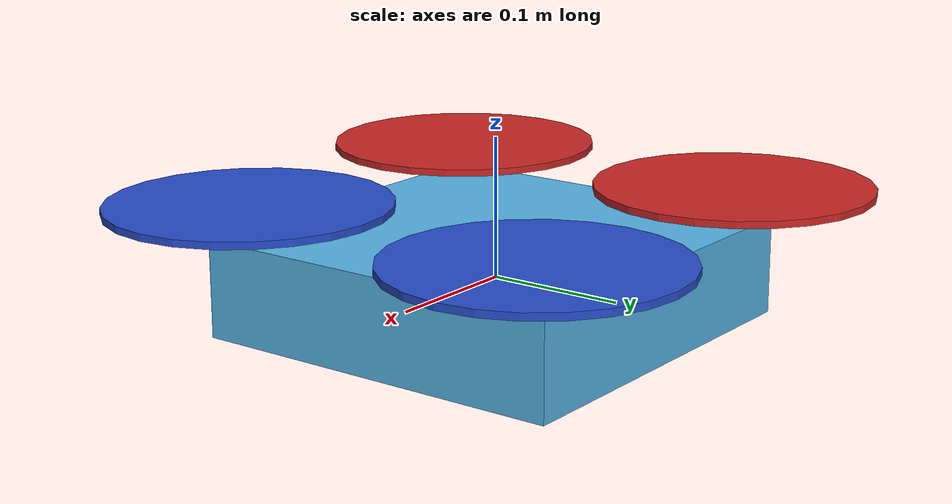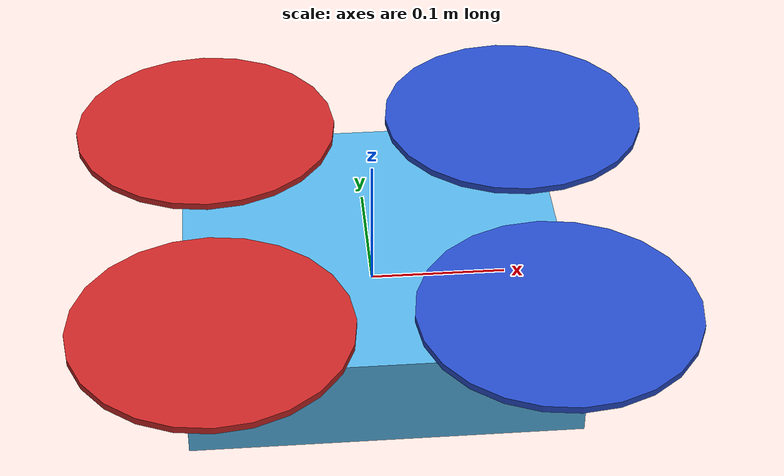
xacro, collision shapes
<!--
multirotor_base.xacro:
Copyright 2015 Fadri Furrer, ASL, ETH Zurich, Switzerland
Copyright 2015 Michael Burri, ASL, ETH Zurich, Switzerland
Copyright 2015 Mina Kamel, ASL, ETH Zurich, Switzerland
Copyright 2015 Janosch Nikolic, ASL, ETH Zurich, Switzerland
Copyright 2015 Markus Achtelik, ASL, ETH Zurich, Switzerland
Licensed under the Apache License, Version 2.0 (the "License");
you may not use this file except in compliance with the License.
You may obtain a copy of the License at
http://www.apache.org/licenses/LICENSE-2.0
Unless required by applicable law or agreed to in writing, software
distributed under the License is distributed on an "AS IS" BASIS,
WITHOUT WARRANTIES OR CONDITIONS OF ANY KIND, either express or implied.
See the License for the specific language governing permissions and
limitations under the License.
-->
<?xml version="1.0"?>

<robot name="largequad" xmlns:xacro="http://ros.org/wiki/xacro">
  <!-- Properties -->
  <xacro:property name="namespace" value="largequad" />
  <xacro:property name="rotor_velocity_slowdown_sim" value="1" />
  <xacro:property name="use_mesh_file" value="true" />
  <xacro:property name="mesh_file" value="package://rotors_description/meshes/largequad.dae" />
  <xacro:property name="mass" value="0.675" /> <!-- [kg] -->
  <xacro:property name="body_width" value="0.28" />
  <xacro:property name="body_height" value="0.07" />
  <xacro:property name="mass_rotor" value="0.00495" /> <!-- [kg] -->
  <xacro:property name="arm_length_front_x" value="0.12" />
  <xacro:property name="arm_length_back_x" value="0.12" />
  <xacro:property name="arm_length_front_y" value="0.12" />
  <xacro:property name="arm_length_back_y" value="0.12" />
  <xacro:property name="rotor_offset_top" value="0.058" />
  <xacro:property name="radius_rotor" value="0.1" />
  <xacro:property name="motor_constant" value="7.64e-06" /> <!-- [kg.m/s^2] -->
  <xacro:property name="moment_constant" value="0.014" />
  <xacro:property name="time_constant_up" value="0" />
  <xacro:property name="time_constant_down" value="0" />
  <xacro:property name="max_rot_velocity" value="10000" /> <!-- [rad/s] -->
  <xacro:property name="sin30" value="0.5" />
  <xacro:property name="cos30" value="0.866025403784" />
  <xacro:property name="sqrt2" value="1.4142135623730951" />
  <xacro:property name="rotor_drag_coefficient" value="0" />
  <xacro:property name="rolling_moment_coefficient" value="0" />

  <!-- Property Blocks -->
  <xacro:property name="body_inertia">
    <inertia ixx="0.003636" ixy="0.0" ixz="0.0" iyy="0.003636" iyz="0.0" izz="0.007379" /> <!-- [kg.m^2] [kg.m^2] [kg.m^2] [kg.m^2] [kg.m^2] [kg.m^2] -->
  </xacro:property>

  <!-- inertia of a single rotor, assuming it is a cuboid. Height=3mm, width=15mm -->
  <xacro:property name="rotor_inertia">
    <inertia
    ixx="${1/12 * mass_rotor * (0.015 * 0.015 + 0.003 * 0.003) * rotor_velocity_slowdown_sim}"
    iyy="${1/12 * mass_rotor * (4 * radius_rotor * radius_rotor + 0.003 * 0.003) * rotor_velocity_slowdown_sim}"
    izz="${1/12 * mass_rotor * (4 * radius_rotor * radius_rotor + 0.015 * 0.015) * rotor_velocity_slowdown_sim}"
    ixy="0.0" ixz="0.0"  iyz="0.0" /> <!-- [kg.m^2] [kg.m^2] [kg.m^2] [kg.m^2] [kg.m^2] [kg.m^2] -->
</xacro:property>

  <!-- Included URDF Files -->
  <xacro:include filename="$(find rotors_description)/urdf/multirotor_base.xacro" />

  <!-- Instantiate multirotor_base_macro once -->
  <xacro:multirotor_base_macro
    robot_namespace="${namespace}"
    mass="${mass}"
    body_width="${body_width}"
    body_height="${body_height}"
    use_mesh_file="${use_mesh_file}"
    mesh_file="${mesh_file}"
    >
    <xacro:insert_block name="body_inertia" />
  </xacro:multirotor_base_macro>

  <!-- Instantiate rotors -->
  <xacro:vertical_rotor
    robot_namespace="${namespace}"
    suffix="front_right"
    direction="ccw"
    motor_constant="${motor_constant}"
    moment_constant="${moment_constant}"
    parent="${namespace}/base_link"
    mass_rotor="${mass_rotor}"
    radius_rotor="${radius_rotor}"
    time_constant_up="${time_constant_up}"
    time_constant_down="${time_constant_down}"
    max_rot_velocity="${max_rot_velocity}"
    motor_number="0"
    rotor_drag_coefficient="${rotor_drag_coefficient}"
    rolling_moment_coefficient="${rolling_moment_coefficient}"
    color="Blue"
    use_own_mesh="false"
    mesh="">
    <origin xyz="${arm_length_front_x} -${arm_length_front_y} ${rotor_offset_top}" rpy="0 0 0" />
    <xacro:insert_block name="rotor_inertia" />
  </xacro:vertical_rotor>

  <xacro:vertical_rotor
    robot_namespace="${namespace}"
    suffix="back_left"
    direction="ccw"
    motor_constant="${motor_constant}"
    moment_constant="${moment_constant}"
    parent="${namespace}/base_link"
    mass_rotor="${mass_rotor}"
    radius_rotor="${radius_rotor}"
    time_constant_up="${time_constant_up}"
    time_constant_down="${time_constant_down}"
    max_rot_velocity="${max_rot_velocity}"
    motor_number="2"
    rotor_drag_coefficient="${rotor_drag_coefficient}"
    rolling_moment_coefficient="${rolling_moment_coefficient}"
    color="Red"
    use_own_mesh="false"
    mesh="">
    <origin xyz="-${arm_length_back_x} ${arm_length_back_y} ${rotor_offset_top}" rpy="0 0 0" />
    <xacro:insert_block name="rotor_inertia" />
  </xacro:vertical_rotor>

  <xacro:vertical_rotor robot_namespace="${namespace}"
    suffix="front_left"
    direction="cw"
    motor_constant="${motor_constant}"
    moment_constant="${moment_constant}"
    parent="${namespace}/base_link"
    mass_rotor="${mass_rotor}"
    radius_rotor="${radius_rotor}"
    time_constant_up="${time_constant_up}"
    time_constant_down="${time_constant_down}"
    max_rot_velocity="${max_rot_velocity}"
    motor_number="3"
    rotor_drag_coefficient="${rotor_drag_coefficient}"
    rolling_moment_coefficient="${rolling_moment_coefficient}"
    color="Blue"
    use_own_mesh="false"
    mesh="">
    <origin xyz="${arm_length_front_x} ${arm_length_front_y} ${rotor_offset_top}" rpy="0 0 0" />
    <xacro:insert_block name="rotor_inertia" />
  </xacro:vertical_rotor>

  <xacro:vertical_rotor robot_namespace="${namespace}"
    suffix="back_right"
    direction="cw"
    motor_constant="${motor_constant}"
    moment_constant="${moment_constant}"
    parent="${namespace}/base_link"
    mass_rotor="${mass_rotor}"
    radius_rotor="${radius_rotor}"
    time_constant_up="${time_constant_up}"
    time_constant_down="${time_constant_down}"
    max_rot_velocity="${max_rot_velocity}"
    motor_number="1"
    rotor_drag_coefficient="${rotor_drag_coefficient}"
    rolling_moment_coefficient="${rolling_moment_coefficient}"
    color="Red"
    use_own_mesh="false"
    mesh="">
    <origin xyz="-${arm_length_back_x} -${arm_length_back_y} ${rotor_offset_top}" rpy="0 0 0" />
    <xacro:insert_block name="rotor_inertia" />
  </xacro:vertical_rotor>

</robot>

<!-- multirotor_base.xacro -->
<robot xmlns:xacro="http://ros.org/wiki/xacro">
  <!-- Main multirotor link -->
  <xacro:macro name="multirotor_base_macro"
    params="robot_namespace mass body_width body_height use_mesh_file mesh_file *inertia">
    <link name="${robot_namespace}/base_link"></link>

    <joint name="${robot_namespace}/base_joint" type="fixed">
      <origin xyz="0 0 0" rpy="0 0 0" />
      <parent link="${robot_namespace}/base_link" />
      <child link="${robot_namespace}/base_link_inertia" />
    </joint>

    <link name="${robot_namespace}/base_link_inertia">
      <inertial>
        <mass value="${mass}" />  <!-- [kg] -->
        <origin xyz="0 0 0" />
        <xacro:insert_block name="inertia" />
      </inertial>

      <visual>
        <origin xyz="0 0 0" rpy="0 0 0" />
        <geometry>
          <xacro:if value="${use_mesh_file}">
            <mesh filename="${mesh_file}" scale="1 1 1" />
          </xacro:if>
          <xacro:unless value="${use_mesh_file}">
            <box size="${body_width} ${body_width} ${body_height}"/>
          </xacro:unless>
        </geometry>
      </visual>

      <collision>
        <origin xyz="0 0 0" rpy="0 0 0" />
        <geometry>
          <box size="${body_width} ${body_width} ${body_height}" />
        </geometry>
      </collision>
    </link>

    <!-- attach multirotor_base_plugin to the base_link -->
    <gazebo>
      <plugin filename="librotors_gazebo_multirotor_base_plugin.so" name="multirotor_base_plugin">
        <robotNamespace>${robot_namespace}</robotNamespace>
        <linkName>${robot_namespace}/base_link</linkName>
        <rotorVelocitySlowdownSim>${rotor_velocity_slowdown_sim}</rotorVelocitySlowdownSim>
      </plugin>
    </gazebo>
  </xacro:macro>

  <!-- Rotor joint and link -->
  <xacro:macro name="vertical_rotor"
    params="robot_namespace suffix direction motor_constant moment_constant parent mass_rotor radius_rotor time_constant_up time_constant_down max_rot_velocity motor_number rotor_drag_coefficient rolling_moment_coefficient color use_own_mesh mesh *origin *inertia">
    <joint name="${robot_namespace}/rotor_${motor_number}_joint" type="continuous">
      <xacro:insert_block name="origin" />
      <axis xyz="0 0 1" />
      <!-- TODO(ff): not currently set because it's not yet supported -->
      <parent link="${parent}" />
      <child link="${robot_namespace}/rotor_${motor_number}" />
    </joint>
    <link name="${robot_namespace}/rotor_${motor_number}">
      <inertial>
        <mass value="${mass_rotor}" /> <!-- [kg] -->
        <xacro:insert_block name="inertia" />
      </inertial>
      <visual>
        <geometry>

          <xacro:if value="${use_own_mesh}">
            <mesh filename="${mesh}"
              scale="1 1 1" />
          </xacro:if>
          <xacro:unless value="${use_own_mesh}">
            <mesh filename="package://rotors_description/meshes/propeller_${direction}.dae"
              scale="${radius_rotor} ${radius_rotor} ${radius_rotor}" /> <!-- The propeller meshes have a radius of 1m -->
          </xacro:unless>
        </geometry>
      </visual>
      <collision>
        <geometry>
          <cylinder length="0.005" radius="${radius_rotor}" />
        </geometry>
      </collision>
    </link>
    <gazebo>
      <plugin name="${robot_namespace}_${suffix}_motor_model" filename="librotors_gazebo_motor_model.so">
        <robotNamespace>${robot_namespace}</robotNamespace>
        <jointName>${robot_namespace}/rotor_${motor_number}_joint</jointName>
        <linkName>${robot_namespace}/rotor_${motor_number}</linkName>
        <turningDirection>${direction}</turningDirection>
        <timeConstantUp>${time_constant_up}</timeConstantUp>
        <timeConstantDown>${time_constant_down}</timeConstantDown>
        <maxRotVelocity>${max_rot_velocity}</maxRotVelocity>
        <motorConstant>${motor_constant}</motorConstant>
        <momentConstant>${moment_constant}</momentConstant>
        <commandSubTopic>gazebo/command/motor_speed</commandSubTopic>
        <motorNumber>${motor_number}</motorNumber>
        <rotorDragCoefficient>${rotor_drag_coefficient}</rotorDragCoefficient>
        <rollingMomentCoefficient>${rolling_moment_coefficient}</rollingMomentCoefficient>
        <motorSpeedPubTopic>motor_speed/${motor_number}</motorSpeedPubTopic>
        <rotorVelocitySlowdownSim>${rotor_velocity_slowdown_sim}</rotorVelocitySlowdownSim>
      </plugin>
    </gazebo>
    <gazebo reference="${robot_namespace}/rotor_${motor_number}">
      <material>Gazebo/${color}</material>
    </gazebo>
  </xacro:macro>
</robot>
